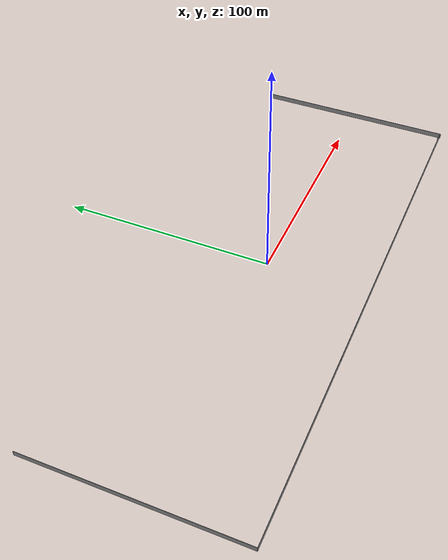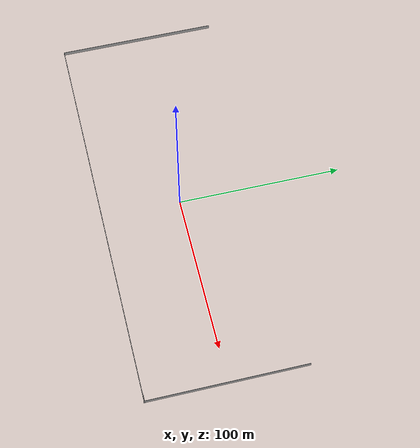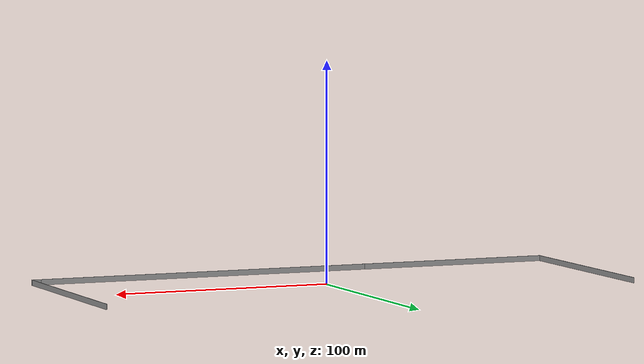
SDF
<?xml version='1.0'?>
<sdf version='1.7'>
  <model name='walls'>
    <pose>-3.00796 0.265249 0 0 -0 0</pose>
    <link name='Wall_31'>
      <collision name='Wall_31_Collision'>
        <geometry>
          <box>
            <size>161.75 0.15 2.5</size>
          </box>
        </geometry>
        <pose>0 0 1.25 0 -0 0</pose>
      </collision>
      <visual name='Wall_31_Visual'>
        <pose>0 0 1.25 0 -0 0</pose>
        <geometry>
          <box>
            <size>161.75 0.15 2.5</size>
          </box>
        </geometry>
        <material>
          <script>
            <uri>file://media/materials/scripts/gazebo.material</uri>
            <name>Gazebo/Grey</name>
          </script>
          <ambient>1 1 1 1</ambient>
        </material>
        <meta>
          <layer>0</layer>
        </meta>
      </visual>
      <pose>43.7075 -48.405 0 0 -0 0</pose>
    </link>
    <link name='Wall_33'>
      <collision name='Wall_33_Collision'>
        <geometry>
          <box>
            <size>96.25 0.15 2.5</size>
          </box>
        </geometry>
        <pose>0 0 1.25 0 -0 0</pose>
      </collision>
      <visual name='Wall_33_Visual'>
        <pose>0 0 1.25 0 -0 0</pose>
        <geometry>
          <box>
            <size>96.25 0.15 2.5</size>
          </box>
        </geometry>
        <material>
          <script>
            <uri>file://media/materials/scripts/gazebo.material</uri>
            <name>Gazebo/Grey</name>
          </script>
          <ambient>1 1 1 1</ambient>
        </material>
        <meta>
          <layer>0</layer>
        </meta>
      </visual>
      <pose>125.146 -0.660367 0 0 -0 1.5708</pose>
    </link>
    <link name='Wall_35'>
      <collision name='Wall_35_Collision'>
        <geometry>
          <box>
            <size>4.5 0.15 2.5</size>
          </box>
        </geometry>
        <pose>0 0 1.25 0 -0 0</pose>
      </collision>
      <visual name='Wall_35_Visual'>
        <pose>0 0 1.25 0 -0 0</pose>
        <geometry>
          <box>
            <size>4.5 0.15 2.5</size>
          </box>
        </geometry>
        <material>
          <script>
            <uri>file://media/materials/scripts/gazebo.material</uri>
            <name>Gazebo/Grey</name>
          </script>
          <ambient>1 1 1 1</ambient>
        </material>
        <meta>
          <layer>0</layer>
        </meta>
      </visual>
      <pose>123.188 -48.1712 0 0 -0 3.14159</pose>
    </link>
    <link name='Wall_37'>
      <collision name='Wall_37_Collision'>
        <geometry>
          <box>
            <size>89.25 0.15 2.5</size>
          </box>
        </geometry>
        <pose>0 0 1.25 0 -0 0</pose>
      </collision>
      <visual name='Wall_37_Visual'>
        <pose>0 0 1.25 0 -0 0</pose>
        <geometry>
          <box>
            <size>89.25 0.15 2.5</size>
          </box>
        </geometry>
        <material>
          <script>
            <uri>file://media/materials/scripts/gazebo.material</uri>
            <name>Gazebo/Grey</name>
          </script>
          <ambient>1 1 1 1</ambient>
        </material>
        <meta>
          <layer>0</layer>
        </meta>
      </visual>
      <pose>-80.8131 -48.3896 0 0 -0 3.14159</pose>
    </link>
    <link name='Wall_38'>
      <collision name='Wall_38_Collision'>
        <geometry>
          <box>
            <size>97.25 0.15 2.5</size>
          </box>
        </geometry>
        <pose>0 0 1.25 0 -0 0</pose>
      </collision>
      <visual name='Wall_38_Visual'>
        <pose>0 0 1.25 0 -0 0</pose>
        <geometry>
          <box>
            <size>97.25 0.15 2.5</size>
          </box>
        </geometry>
        <material>
          <script>
            <uri>file://media/materials/scripts/gazebo.material</uri>
            <name>Gazebo/Grey</name>
          </script>
          <ambient>1 1 1 1</ambient>
        </material>
        <meta>
          <layer>0</layer>
        </meta>
      </visual>
      <pose>-125.363 0.160366 0 0 -0 1.5708</pose>
    </link>
    <static>1</static>
  </model>
</sdf>
